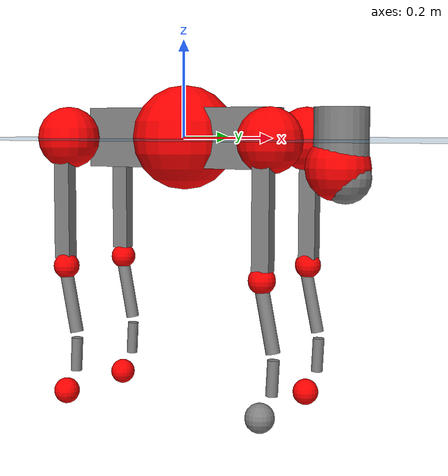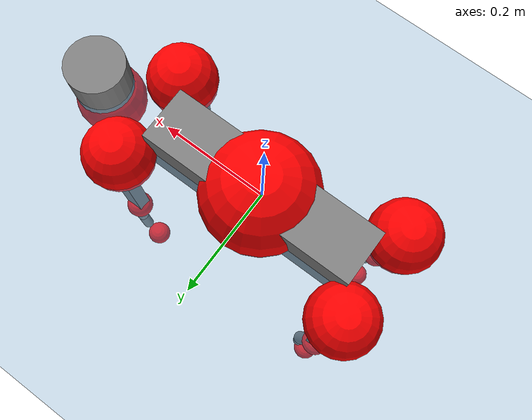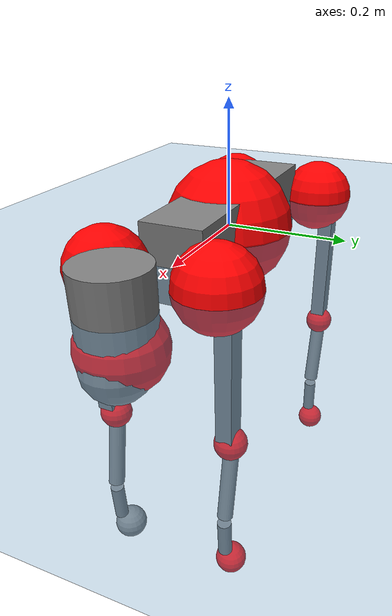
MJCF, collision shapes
<mujoco model="go2">
  <compiler angle="radian" assetdir="assets" balanceinertia="true" inertiafromgeom="false"/>

  <option timestep="0.005" density="1.2" viscosity="2e-05"/>

  <size nkey="1"/>

  <visual>
    <quality shadowsize="8192"/>
    <map shadowclip="0.5"/>
  </visual>

  <default>
    <default class="/">
      <geom contype="0" conaffinity="0" group="1" solref="-1000 -80"/>
      <site size="0.01 0.005 0.005" group="5"/>
      <general forcelimited="true" biastype="affine" gainprm="20" biasprm="0 -20 -0.5"/>
      <default class="go2">
        <joint armature="0.01" damping="0.01" frictionloss="0.2"/>
        <geom condim="1" margin="0.001"/>
        <default class="visual">
          <geom type="mesh" group="2"/>
        </default>
        <default class="collision">
          <geom group="3"/>
          <default class="foot">
            <geom size="0.022 0 0" condim="6" priority="1" friction="0.8 0.02 0.01" solimp="0.015 1 0.022"/>
          </default>
        </default>
        <default class="reward_collision_sphere">
          <geom group="5" rgba="1 0 0 1"/>
        </default>
      </default>
    </default>
  </default>

  <asset>
    <texture type="skybox" colorspace="auto" name="//unnamed_texture_0" builtin="gradient" rgb1="0.95 0.95 0.95" rgb2="0.95 0.95 0.95" width="100" height="600"/>
    <texture type="2d" colorspace="auto" name="texplane" builtin="checker" rgb1="0.345 0.575 0.748" rgb2="0.345 0.575 0.748" markrgb="1 1 1" width="512" height="512"/>
    <material name="MatPlane" class="/" texture="texplane" texuniform="true" texrepeat="2 2" specular="0.9"/>
    <material name="metal" class="/" rgba="0.9 0.95 0.95 1"/>
    <material name="black" class="/" rgba="0 0 0 1"/>
    <material name="white" class="/"/>
    <material name="gray" class="/" rgba="0.671705 0.692426 0.77427 1"/>
    <mesh name="base_0" class="/" file="base_0.obj"/>
    <mesh name="base_1" class="/" file="base_1.obj"/>
    <mesh name="base_2" class="/" file="base_2.obj"/>
    <mesh name="base_3" class="/" file="base_3.obj"/>
    <mesh name="base_4" class="/" file="base_4.obj"/>
    <mesh name="hip_0" class="/" file="hip_0.obj"/>
    <mesh name="hip_1" class="/" file="hip_1.obj"/>
    <mesh name="thigh_0" class="/" file="thigh_0.obj"/>
    <mesh name="thigh_1" class="/" file="thigh_1.obj"/>
    <mesh name="thigh_mirror_0" class="/" file="thigh_mirror_0.obj"/>
    <mesh name="thigh_mirror_1" class="/" file="thigh_mirror_1.obj"/>
    <mesh name="calf_0" class="/" file="calf_0.obj"/>
    <mesh name="calf_1" class="/" file="calf_1.obj"/>
    <mesh name="calf_mirror_0" class="/" file="calf_mirror_0.obj"/>
    <mesh name="calf_mirror_1" class="/" file="calf_mirror_1.obj"/>
    <mesh name="foot" class="/" file="foot.obj"/>
  </asset>

  <worldbody>
    <geom name="floor" class="/" size="100 100 0.125" type="plane" group="0" material="MatPlane"/>
    <light name="toplight_shadow" class="/" pos="0 0 5" dir="0.0990148 0.0990148 -0.990148" type="directional" ambient="0.04 0.04 0.04" diffuse="0.55 0.55 0.55" specular="0.12 0.12 0.12"/>
    <light name="toplight_fill" class="/" pos="0 0 5" dir="0.0990148 0.0990148 -0.990148" type="directional" castshadow="false" ambient="0.04 0.04 0.04" diffuse="0.3 0.3 0.3" specular="0.08 0.08 0.08"/>
    <body name="trunk" childclass="go2" pos="0.00180833 0.00064512 0.00122517" quat="0.999999 1.05773e-05 0.00103205 -4.01731e-05">
      <inertial pos="0.0275939 0.00359296 -0.00549533" quat="0.00194766 0.710501 0.00614375 0.703667" mass="8.65121" diaginertia="0.26408 0.0226904 0.069102"/>
      <joint name="//unnamed_joint_0" type="free" armature="0" damping="0" frictionloss="0"/>
      <geom name="//unnamed_geom_1" class="visual" material="black" mesh="base_0"/>
      <geom name="//unnamed_geom_2" class="visual" material="black" mesh="base_1"/>
      <geom name="//unnamed_geom_3" class="visual" material="black" mesh="base_2"/>
      <geom name="//unnamed_geom_4" class="visual" material="white" mesh="base_3"/>
      <geom name="//unnamed_geom_5" class="visual" material="gray" mesh="base_4"/>
      <geom name="trunk_1" class="collision" size="0.201104 0.0499819 0.0609405" type="box"/>
      <geom name="trunk_2" class="collision" size="0.0534565 0.0481109" pos="0.343616 0 0.0124827" type="cylinder"/>
      <geom name="trunk_3" class="collision" size="0.0502491" pos="0.353261 0 -0.0748965"/>
      <geom name="//unnamed_geom_9" class="reward_collision_sphere" size="0.106913"/>
      <geom name="//unnamed_geom_10" class="reward_collision_sphere" size="0.0641478" pos="0.337588 0 -0.0561724"/>
      <site name="imu" pos="-0.00291257 -0.0114145 0.0349922" size="0.0106913"/>
      <camera name="track" pos="0 -1.5069 0" quat="0.707107 0.707107 0 0" mode="trackcom"/>
      <camera name="ego_camera" pos="0.376169 0 0.0561724" quat="-0.5 -0.5 0.5 0.5"/>
      <body name="FL_hip" pos="0.234931 0.0340074 -0.00124721" quat="1 0.000106039 -3.53001e-05 -0.000131307">
        <inertial pos="-0.0103017 0.00107622 -0.00212196" quat="0.497701 0.498701 0.505054 0.498508" mass="0.861958" diaginertia="0.00235329 0.000143798 0.00147589"/>
        <joint name="FL_hip_joint" pos="0 0 0" axis="0.99994 0.0102079 -0.00392364" range="-1.08553 1.05154" armature="0.00809742" damping="0.0356262" frictionloss="0.187952"/>
        <geom name="//unnamed_geom_11" class="visual" material="metal" mesh="hip_0"/>
        <geom name="//unnamed_geom_12" class="visual" material="gray" mesh="hip_1"/>
        <geom name="//unnamed_geom_13" class="collision" size="0.04918 0.0213826" pos="0 0.0602758 0" quat="0.707107 0.707107 0 0" type="cylinder"/>
        <geom name="//unnamed_geom_14" class="reward_collision_sphere" size="0.0641478" pos="0 0.0527414 0"/>
        <body name="FL_thigh" pos="0.000489427 0.0680365 0.000321172" quat="0.999998 -0.000424667 0.00103483 -0.00153406">
          <inertial pos="-0.00330504 -0.0164305 -0.0448277" quat="0.828213 0.0741947 -0.0205616 0.5551" mass="1.42622" diaginertia="0.0162154 0.00143933 0.00262843"/>
          <joint name="FL_thigh_joint" pos="0 0 0" axis="0.0198816 0.999599 0.0201506" stiffness="0.0105141" range="-1.61591 3.54945" armature="0.011878" damping="0" frictionloss="0.252008"/>
          <geom name="//unnamed_geom_15" class="visual" material="metal" mesh="thigh_0"/>
          <geom name="//unnamed_geom_16" class="visual" material="gray" mesh="thigh_1"/>
          <geom name="//unnamed_geom_17" class="collision" size="0.113862 0.0130969 0.0181752" pos="0 0 -0.132941" quat="0.707107 0 0.707107 0" type="box"/>
          <body name="FL_calf" pos="-0.00261161 0.00305554 -0.260387" quat="0.999999 -2.62777e-05 -0.000945885 0.00083742">
            <inertial pos="0.00513127 -0.00104152 -0.178694" quat="0.707743 -0.00229032 0.00565396 0.706444" mass="0.290816" diaginertia="0.00380002 0.000357771 0.00015565"/>
            <joint name="FL_calf_joint" pos="0 0 0" axis="-0.0516409 0.997449 -0.0492806" stiffness="0.00221239" range="-2.70587 -0.806705" armature="0.0110329" damping="0.0260988" frictionloss="0.207769"/>
            <geom name="//unnamed_geom_18" class="visual" material="gray" mesh="calf_0"/>
            <geom name="//unnamed_geom_19" class="visual" material="black" mesh="calf_1"/>
            <geom name="FL_calf0" class="collision" size="0.0128296 0.0641478" pos="0.00964536 0 -0.0748965" quat="0.994493 0 -0.104807 0" type="cylinder"/>
            <geom name="//unnamed_geom_21" class="collision" size="0.0117604 0.0347468" pos="0.0241134 0 -0.184745" quat="0.999688 0 0.0249974 0" type="cylinder"/>
            <geom name="//unnamed_geom_22" class="visual" pos="0 0 -0.265882" quat="1 0 0 0" material="black" mesh="foot"/>
            <geom name="FL_foot" class="foot" size="0.0172085" pos="-0.00241134 0 -0.265882"/>
            <geom name="//unnamed_geom_24" class="reward_collision_sphere" size="0.0267283"/>
            <geom name="//unnamed_geom_25" class="reward_collision_sphere" size="0.0267283" pos="-0.00241134 0 -0.265882"/>
            <site name="FL_foot" class="foot" pos="-0.00241134 0 -0.265882" size="0.0106913"/>
          </body>
        </body>
      </body>
      <body name="FR_hip" pos="0.234018 -0.0339676 -0.00348046" quat="1 0.000167086 6.66995e-05 -1.52874e-05">
        <inertial pos="-0.00991642 -0.00319812 0.00116491" quat="0.49799 0.505256 0.500049 0.496662" mass="0.799478" diaginertia="0.00220723 0.000143943 0.00144345"/>
        <joint name="FR_hip_joint" pos="0 0 0" axis="0.999979 -0.00349241 -0.00548121" range="-0.969347 1.09258" armature="0.0124728" damping="0" frictionloss="0.253238"/>
        <geom name="//unnamed_geom_26" class="visual" pos="0 -4.31073e-09 -1.84896e-07" quat="4.63268e-05 1 0 0" material="metal" mesh="hip_0"/>
        <geom name="//unnamed_geom_27" class="visual" pos="0 -6.9882e-09 4.57318e-07" quat="4.63268e-05 1 0 0" material="gray" mesh="hip_1"/>
        <geom name="//unnamed_geom_28" class="collision" size="0.04918 0.0213826" pos="0 -0.0602758 0" quat="0.707107 0.707107 0 0" type="cylinder"/>
        <geom name="//unnamed_geom_29" class="reward_collision_sphere" size="0.0641478" pos="0 -0.0527414 0"/>
        <body name="FR_thigh" pos="-0.00115475 -0.0764385 4.36233e-05" quat="1 -0.00022954 0.000768888 -0.000594206">
          <inertial pos="-0.0042208 0.0190735 -0.0426563" quat="0.558353 -0.0221808 0.0982023 0.823472" mass="1.52569" diaginertia="0.0159003 0.00144334 0.002762"/>
          <joint name="FR_thigh_joint" pos="0 0 0" axis="-0.00361052 -0.999914 -0.0126072" stiffness="0.0010709" range="-3.59907 1.5515" armature="0.0104234" damping="0.0164061" frictionloss="0.143893"/>
          <geom name="//unnamed_geom_30" class="visual" material="metal" mesh="thigh_mirror_0"/>
          <geom name="//unnamed_geom_31" class="visual" material="gray" mesh="thigh_mirror_1"/>
          <geom name="//unnamed_geom_32" class="collision" size="0.113862 0.0130969 0.0181752" pos="0 0 -0.132941" quat="0.707107 0 0.707107 0" type="box"/>
          <body name="FR_calf" pos="-0.00363285 0.00454145 -0.264439" quat="1 0.00062225 -0.000149373 -0.000160093">
            <inertial pos="0.00835513 -0.00042071 -0.180838" quat="0.703439 -0.00452076 0.00183198 0.710739" mass="0.287574" diaginertia="0.0040661 0.000367919 0.000164221"/>
            <joint name="FR_calf_joint" pos="0 0 0" axis="-0.00237799 -0.999979 -0.0060242" stiffness="0.00762834" range="0.840984 2.70898" armature="0.00961607" damping="0.0185993" frictionloss="0.267312"/>
            <geom name="//unnamed_geom_33" class="visual" material="gray" mesh="calf_mirror_0"/>
            <geom name="//unnamed_geom_34" class="visual" material="black" mesh="calf_mirror_1"/>
            <geom name="FR_calf0" class="collision" size="0.0138987 0.0641478" pos="0.0120567 0 -0.0748965" quat="0.995004 0 -0.0998334 0" type="cylinder"/>
            <geom name="//unnamed_geom_36" class="collision" size="0.0117604 0.0347468" pos="0.0241134 0 -0.184745" quat="0.999688 0 0.0249974 0" type="cylinder"/>
            <geom name="//unnamed_geom_37" class="visual" pos="0 0 -0.265882" quat="1 0 0 0" material="black" mesh="foot"/>
            <geom name="FR_foot" class="foot" size="0.0292191" pos="-0.00241134 0 -0.265882"/>
            <geom name="//unnamed_geom_39" class="reward_collision_sphere" size="0.0267283"/>
            <geom name="//unnamed_geom_40" class="reward_collision_sphere" size="0.0267283" pos="-0.00241134 0 -0.265882"/>
            <site name="FR_foot" class="foot" pos="-0.00241134 0 -0.265882" size="0.0106913"/>
          </body>
        </body>
      </body>
      <body name="RL_hip" pos="-0.227841 0.0360966 -0.000693715" quat="0.999999 -0.000807205 -4.09455e-05 -0.000813505">
        <inertial pos="0.00750481 -0.00258648 0.00155932" quat="0.506677 0.49737 0.496244 0.499643" mass="0.840794" diaginertia="0.00228517 0.000140663 0.00157805"/>
        <joint name="RL_hip_joint" pos="0 0 0" axis="-0.999989 0.00266155 0.00397135" range="-1.0129 1.17729" armature="0.012921" damping="0.00677937" frictionloss="0.2047"/>
        <geom name="//unnamed_geom_41" class="visual" pos="3.71152e-10 0 7.27544e-08" quat="4.63268e-05 0 1 0" material="metal" mesh="hip_0"/>
        <geom name="//unnamed_geom_42" class="visual" pos="6.01683e-10 0 6.45228e-08" quat="4.63268e-05 0 1 0" material="gray" mesh="hip_1"/>
        <geom name="//unnamed_geom_43" class="collision" size="0.04918 0.0213826" pos="0 0.0602758 0" quat="0.707107 0.707107 0 0" type="cylinder"/>
        <geom name="//unnamed_geom_44" class="reward_collision_sphere" size="0.0641478" pos="0 0.0527414 0"/>
        <body name="RL_thigh" pos="0.000621606 0.0781453 -0.00239668" quat="1 -3.35998e-05 1.67012e-05 1.6778e-05">
          <inertial pos="-0.00490083 -0.0193201 -0.043118" quat="0.82637 0.0794935 -0.0213957 0.557078" mass="1.40717" diaginertia="0.0152107 0.00142901 0.00274409"/>
          <joint name="RL_thigh_joint" pos="0 0 0" axis="-0.014031 0.999849 -0.0102971" range="-0.522872 4.49303" armature="0.0103614" damping="0.00406491" frictionloss="0.233125"/>
          <geom name="//unnamed_geom_45" class="visual" material="metal" mesh="thigh_0"/>
          <geom name="//unnamed_geom_46" class="visual" material="gray" mesh="thigh_1"/>
          <geom name="//unnamed_geom_47" class="collision" size="0.113862 0.0130969 0.0181752" pos="0 0 -0.132941" quat="0.707107 0 0.707107 0" type="box"/>
          <body name="RL_calf" pos="0.000652694 0.00160946 -0.267595" quat="1 -0.000599054 5.09067e-05 -0.000261038">
            <inertial pos="0.00709444 -0.000648289 -0.177554" quat="0.72383 0.022263 -0.0193494 0.689347" mass="0.291309" diaginertia="0.00383009 0.00036177 0.000170959"/>
            <joint name="RL_calf_joint" pos="0 0 0" axis="-0.00865591 0.999962 -0.00124256" stiffness="0.00849933" range="-2.70465 -0.842577" armature="0.0116965" damping="0" frictionloss="0.205358"/>
            <geom name="//unnamed_geom_48" class="visual" material="gray" mesh="calf_0"/>
            <geom name="//unnamed_geom_49" class="visual" material="black" mesh="calf_1"/>
            <geom name="RL_calf0" class="collision" size="0.0138987 0.0641478" pos="0.0120567 0 -0.0748965" quat="0.995004 0 -0.0998334 0" type="cylinder"/>
            <geom name="//unnamed_geom_51" class="collision" size="0.0117604 0.0347468" pos="0.0241134 0 -0.184745" quat="0.999688 0 0.0249974 0" type="cylinder"/>
            <geom name="//unnamed_geom_52" class="visual" pos="0 0 -0.265882" quat="1 0 0 0" material="black" mesh="foot"/>
            <geom name="RL_foot" class="foot" size="0.0164194" pos="-0.00241134 0 -0.265882"/>
            <geom name="//unnamed_geom_54" class="reward_collision_sphere" size="0.0267283"/>
            <geom name="//unnamed_geom_55" class="reward_collision_sphere" size="0.0267283" pos="-0.00241134 0 -0.265882"/>
            <site name="RL_foot" class="foot" pos="-0.00241134 0 -0.265882" size="0.0106913"/>
          </body>
        </body>
      </body>
      <body name="RR_hip" pos="-0.231156 -0.0310628 -0.00119976" quat="0.999999 0.000714819 -0.000229338 -0.000701417">
        <inertial pos="0.0107808 -0.00148753 -0.00334677" quat="0.504043 0.500446 0.499562 0.495916" mass="0.82496" diaginertia="0.00221533 0.00014302 0.00153425"/>
        <joint name="RR_hip_joint" pos="0 0 0" axis="-0.999996 -0.00296127 0.000216951" range="-0.988127 0.939183" armature="0.0114238" damping="0.0197115" frictionloss="0.204962"/>
        <geom name="//unnamed_geom_56" class="visual" pos="-3.86809e-10 -4.31073e-09 2.5765e-07" quat="2.14617e-09 4.63268e-05 4.63268e-05 -1" material="metal" mesh="hip_0"/>
        <geom name="//unnamed_geom_57" class="visual" pos="-5.62959e-10 -6.9882e-09 -3.92795e-07" quat="2.14617e-09 4.63268e-05 4.63268e-05 -1" material="gray" mesh="hip_1"/>
        <geom name="//unnamed_geom_58" class="collision" size="0.04918 0.0213826" pos="0 -0.0602758 0" quat="0.707107 0.707107 0 0" type="cylinder"/>
        <geom name="//unnamed_geom_59" class="reward_collision_sphere" size="0.0641478" pos="0 -0.0527414 0"/>
        <body name="RR_thigh" pos="0.00259141 -0.0726791 -0.00449082" quat="1 0.000450778 -0.000166265 0.000231755">
          <inertial pos="-0.00588623 0.0145451 -0.0383956" quat="0.55097 -0.0195113 0.0861742 0.829835" mass="1.61298" diaginertia="0.0169538 0.00153998 0.00295391"/>
          <joint name="RR_thigh_joint" pos="0 0 0" axis="-0.00217777 -0.999923 -0.0122188" range="-4.51902 0.50739" armature="0.00994736" damping="0" frictionloss="0.206032"/>
          <geom name="//unnamed_geom_60" class="visual" material="metal" mesh="thigh_mirror_0"/>
          <geom name="//unnamed_geom_61" class="visual" material="gray" mesh="thigh_mirror_1"/>
          <geom name="//unnamed_geom_62" class="collision" size="0.113862 0.0130969 0.0181752" pos="0 0 -0.132941" quat="0.707107 0 0.707107 0" type="box"/>
          <body name="RR_calf" pos="0.00411919 -0.00292079 -0.262658" quat="1 -0.000130592 -0.000155945 0.000259129">
            <inertial pos="0.00598654 0.00033685 -0.175516" quat="0.704681 -0.00201524 -0.0129382 0.709403" mass="0.308985" diaginertia="0.00386876 0.000350182 0.00016602"/>
            <joint name="RR_calf_joint" pos="0 0 0" axis="0.00196049 -0.999939 -0.0108353" range="0.79285 2.68403" armature="0.0133544" damping="0.0213852" frictionloss="0.215853"/>
            <geom name="//unnamed_geom_63" class="visual" material="gray" mesh="calf_mirror_0"/>
            <geom name="//unnamed_geom_64" class="visual" material="black" mesh="calf_mirror_1"/>
            <geom name="RR_calf0" class="collision" size="0.0138987 0.0641478" pos="0.0120567 0 -0.0748965" quat="0.995004 0 -0.0998334 0" type="cylinder"/>
            <geom name="//unnamed_geom_66" class="collision" size="0.0117604 0.0347468" pos="0.0241134 0 -0.184745" quat="0.999688 0 0.0249974 0" type="cylinder"/>
            <geom name="//unnamed_geom_67" class="visual" pos="0 0 -0.265882" quat="1 0 0 0" material="black" mesh="foot"/>
            <geom name="RR_foot" class="foot" size="0.0242652" pos="-0.00241134 0 -0.265882"/>
            <geom name="//unnamed_geom_69" class="reward_collision_sphere" size="0.0267283"/>
            <geom name="//unnamed_geom_70" class="reward_collision_sphere" size="0.0267283" pos="-0.00241134 0 -0.265882"/>
            <site name="RR_foot" class="foot" pos="-0.00241134 0 -0.265882" size="0.0106913"/>
          </body>
        </body>
      </body>
    </body>
  </worldbody>

  <contact>
    <pair class="/" geom1="floor" geom2="FL_foot" name="//unnamed_contact_0"/>
    <pair class="/" geom1="floor" geom2="FR_foot" name="//unnamed_contact_1"/>
    <pair class="/" geom1="floor" geom2="RL_foot" name="//unnamed_contact_2"/>
    <pair class="/" geom1="floor" geom2="RR_foot" name="//unnamed_contact_3"/>
  </contact>

  <actuator>
    <general name="FL_hip" class="/" joint="FL_hip_joint" forcerange="-23.0071 23.0071" gainprm="22.8403" biasprm="0 -22.8403 -0.501921"/>
    <general name="FL_thigh" class="/" joint="FL_thigh_joint" forcerange="-25.3222 25.3222" gainprm="22.8403" biasprm="0 -22.8403 -0.501921"/>
    <general name="FL_calf" class="/" joint="FL_calf_joint" forcerange="-44.0827 44.0827" gainprm="22.8403" biasprm="0 -22.8403 -0.501921"/>
    <general name="FR_hip" class="/" joint="FR_hip_joint" forcerange="-25.7305 25.7305" gainprm="22.8403" biasprm="0 -22.8403 -0.501921"/>
    <general name="FR_thigh" class="/" joint="FR_thigh_joint" forcerange="-26.2108 26.2108" gainprm="22.8403" biasprm="0 -22.8403 -0.501921"/>
    <general name="FR_calf" class="/" joint="FR_calf_joint" forcerange="-54.5957 54.5957" gainprm="22.8403" biasprm="0 -22.8403 -0.501921"/>
    <general name="RL_hip" class="/" joint="RL_hip_joint" forcerange="-25.4686 25.4686" gainprm="22.8403" biasprm="0 -22.8403 -0.501921"/>
    <general name="RL_thigh" class="/" joint="RL_thigh_joint" forcerange="-28.7874 28.7874" gainprm="22.8403" biasprm="0 -22.8403 -0.501921"/>
    <general name="RL_calf" class="/" joint="RL_calf_joint" forcerange="-44.2024 44.2024" gainprm="22.8403" biasprm="0 -22.8403 -0.501921"/>
    <general name="RR_hip" class="/" joint="RR_hip_joint" forcerange="-23.5045 23.5045" gainprm="22.8403" biasprm="0 -22.8403 -0.501921"/>
    <general name="RR_thigh" class="/" joint="RR_thigh_joint" forcerange="-29.9751 29.9751" gainprm="22.8403" biasprm="0 -22.8403 -0.501921"/>
    <general name="RR_calf" class="/" joint="RR_calf_joint" forcerange="-43.2393 43.2393" gainprm="22.8403" biasprm="0 -22.8403 -0.501921"/>
  </actuator>

  <sensor>
    <gyro site="imu" name="imu_angular_velocity"/>
    <velocimeter site="imu" name="imu_linear_velocity"/>
    <framelinvel objtype="site" objname="FL_foot" name="FL_foot_global_linear_velocity"/>
    <framelinvel objtype="site" objname="FR_foot" name="FR_foot_global_linear_velocity"/>
    <framelinvel objtype="site" objname="RL_foot" name="RL_foot_global_linear_velocity"/>
    <framelinvel objtype="site" objname="RR_foot" name="RR_foot_global_linear_velocity"/>
  </sensor>

  <keyframe>
    <key name="home" qpos="0 0 0.325 1 0 0 0 0.1 0.8 -1.5 -0.1 -0.8 1.5 -0.1 0.8 -1.5 0.1 -0.8 1.5"/>
  </keyframe>
</mujoco>
